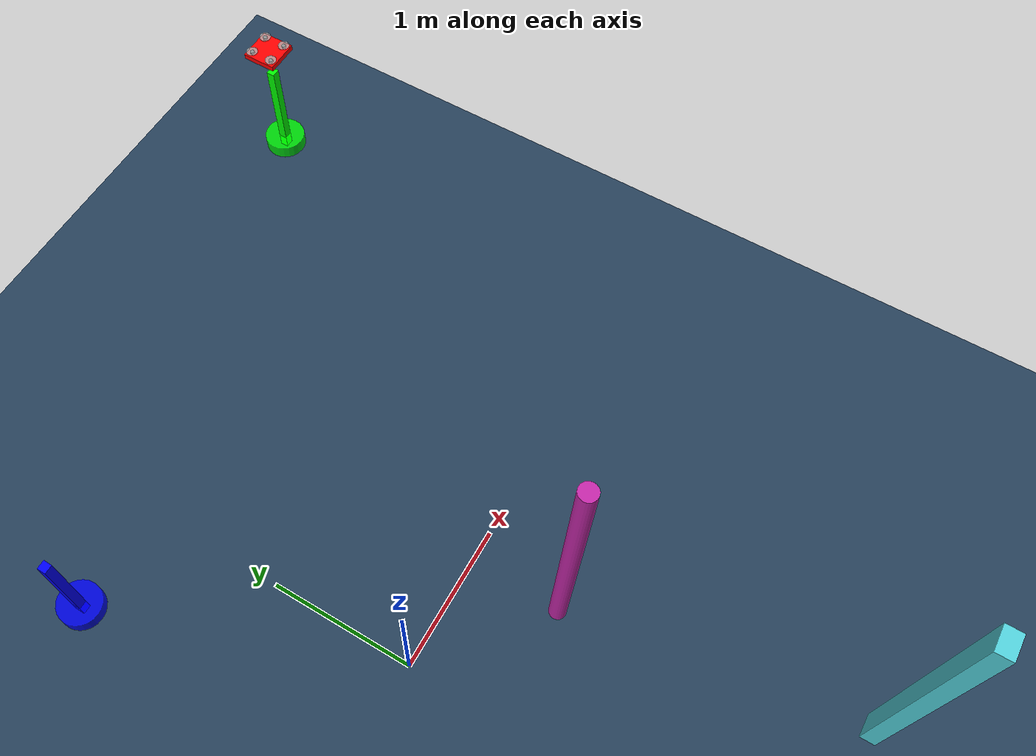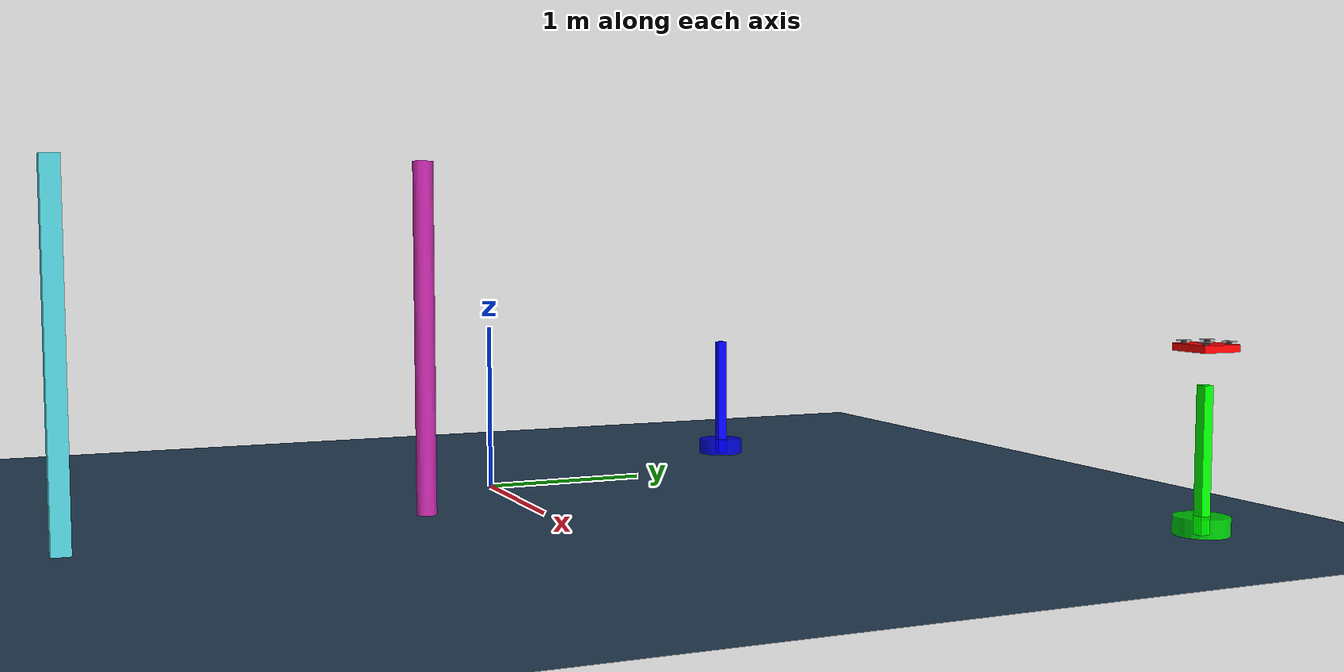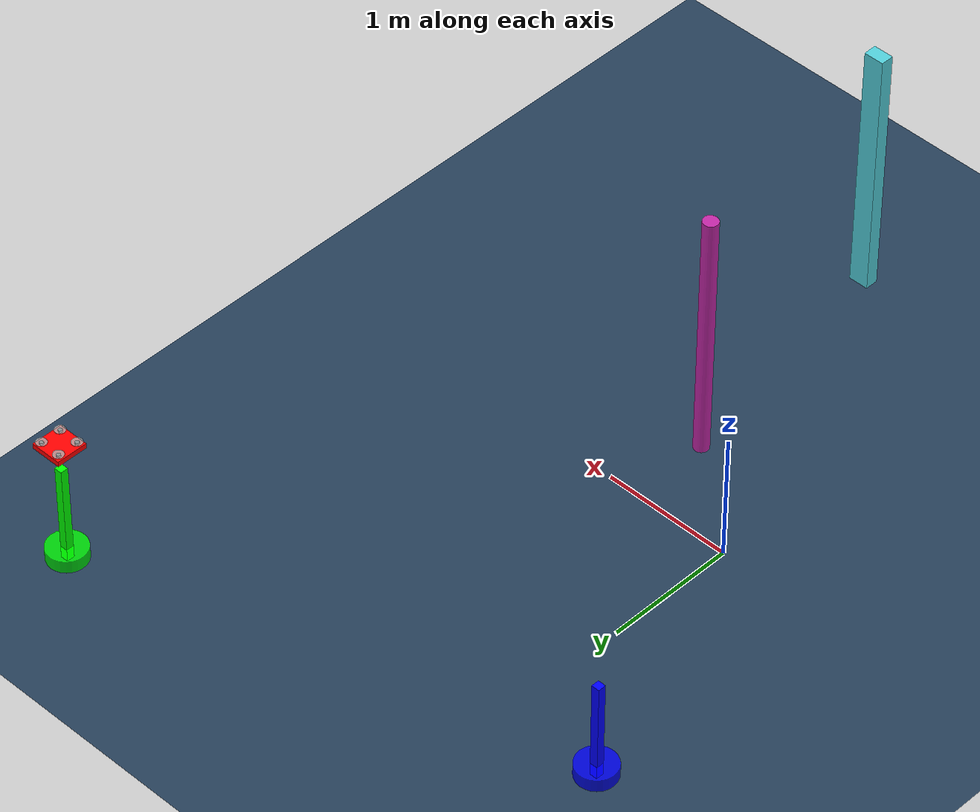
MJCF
<mujoco model="complex_uav_env">
  <compiler angle="degree" coordinate="local" inertiafromgeom="true"/>
  <option integrator="RK4" timestep="0.01"/>

  <visual>
    <headlight diffuse="0.6 0.6 0.6" ambient="0.3 0.3 0.3"/>
    <rgba haze="0.15 0.25 0.35 1"/>
    <global offwidth="2560" offheight="1440"/>
  </visual>

  <asset>
    <texture type="skybox" builtin="gradient" rgb1="0.3 0.5 0.7" rgb2="0 0 0" width="512" height="3072"/>
    <texture name="grid" type="2d" builtin="checker" rgb1="0.1 0.2 0.3" rgb2="0.2 0.3 0.4" width="512" height="512"/>
    <material name="grid" texture="grid" texrepeat="1 1" reflectance="0.2"/>
  </asset>

  <worldbody>
    <!-- Ground plane -->
    <geom name="ground" type="plane" size="4.0 4.0 0.1" material="grid"/>
    <light name="light1" pos="0 0 4" dir="0 0 -1" diffuse="1 1 1"/>

    <!-- Start position marker (green) -->
    <geom name="start_marker" type="cylinder" size="0.15 0.05" pos="3.0 3.0 0.05" rgba="0 1 0 0.8"/>
    <geom name="start_pole" type="box" size="0.03 0.03 0.4" pos="3.0 3.0 0.4" rgba="0 1 0 1"/>

    <!-- Goal position marker (blue) -->
    <geom name="goal_marker" type="cylinder" size="0.15 0.05" pos="-0.7410802674703048 1.9691488231403973 0.05" rgba="0 0 1 0.8"/>
    <geom name="goal_pole" type="box" size="0.03 0.03 0.4" pos="-0.7410802674703048 1.9691488231403973 0.4" rgba="0 0 1 1"/>

    <!-- UAV starting position -->
    <body name="chassis" pos="3.0 3.0 1.0">
      <joint type="free" name="root"/>
      <geom type="box" size="0.12 0.12 0.02" rgba="1.0 0.0 0.0 1.0" mass="0.8"/>

      <!-- Propeller arms and motors -->
      <geom type="box" size="0.08 0.01 0.005" pos="0 0 0.01" rgba="0.3 0.3 0.3 1"/>
      <geom type="box" size="0.01 0.08 0.005" pos="0 0 0.01" rgba="0.3 0.3 0.3 1"/>

      <!-- Motor visual geometry -->
      <geom type="cylinder" size="0.015 0.02" pos="0.08 0.08 0.015" rgba="0.2 0.2 0.2 1"/>
      <geom type="cylinder" size="0.015 0.02" pos="-0.08 0.08 0.015" rgba="0.2 0.2 0.2 1"/>
      <geom type="cylinder" size="0.015 0.02" pos="0.08 -0.08 0.015" rgba="0.2 0.2 0.2 1"/>
      <geom type="cylinder" size="0.015 0.02" pos="-0.08 -0.08 0.015" rgba="0.2 0.2 0.2 1"/>

      <!-- Propellers -->
      <geom type="cylinder" size="0.04 0.002" pos="0.08 0.08 0.035" rgba="0.7 0.7 0.7 0.8"/>
      <geom type="cylinder" size="0.04 0.002" pos="-0.08 0.08 0.035" rgba="0.7 0.7 0.7 0.8"/>
      <geom type="cylinder" size="0.04 0.002" pos="0.08 -0.08 0.035" rgba="0.7 0.7 0.7 0.8"/>
      <geom type="cylinder" size="0.04 0.002" pos="-0.08 -0.08 0.035" rgba="0.7 0.7 0.7 0.8"/>

      <!-- Sites for motor force application -->
      <site name="motor1" pos="0.08 0.08 0" size="0.01"/>
      <site name="motor2" pos="-0.08 0.08 0" size="0.01"/>
      <site name="motor3" pos="0.08 -0.08 0" size="0.01"/>
      <site name="motor4" pos="-0.08 -0.08 0" size="0.01"/>
    </body>
    <geom name="test_obs_0" type="box" size="0.07734925511251402 0.05042516907455243 1.0" pos="1.0974370592112965 -2.60225710994564 1.0" rgba="0.32021919841614377 0.8134903326102161 0.8552234826955887 1.0"/>
    <geom name="test_obs_1" type="cylinder" size="0.05753234757042326 1.0" pos="0.7733195017603787 -0.6254436218242277 1.0" rgba="0.7646507918694423 0.1518883691313241 0.6584420633112263 1.0"/>
  </worldbody>

  <actuator>
    <motor name="m1" gear="0 0 1 0 0 0" site="motor1"/>
    <motor name="m2" gear="0 0 1 0 0 0" site="motor2"/>
    <motor name="m3" gear="0 0 1 0 0 0" site="motor3"/>
    <motor name="m4" gear="0 0 1 0 0 0" site="motor4"/>
  </actuator>
</mujoco>
